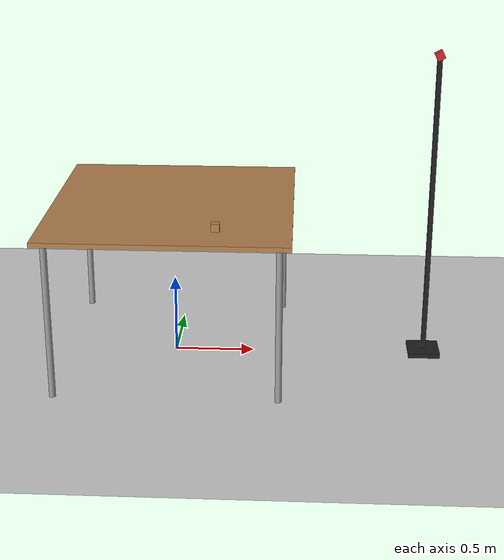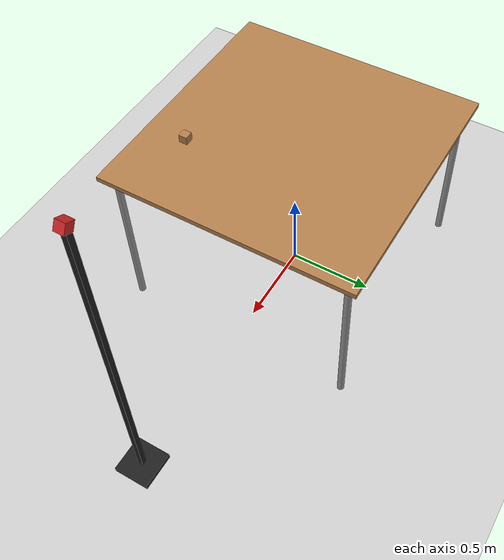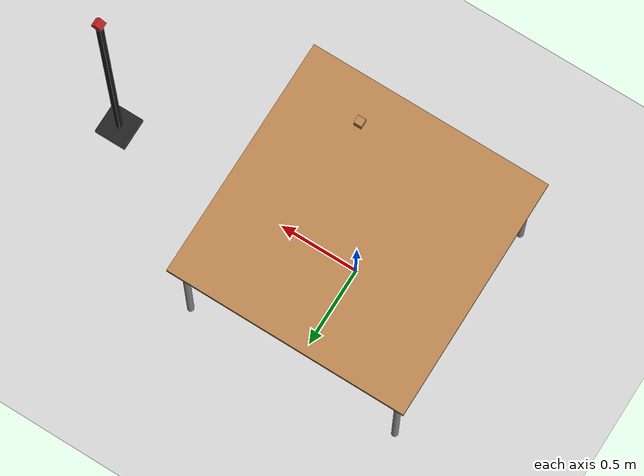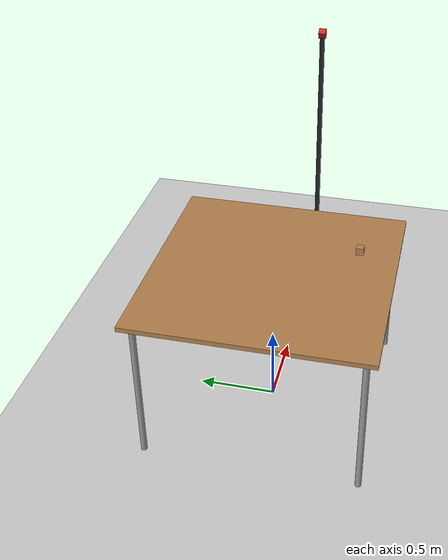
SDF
<sdf version="1.7">
 <world name="burger_assemble">
  <gravity>0 0 -9.8</gravity>
  <light name="sun" type="directional">
   <pose>0 0 10 0 -0 0</pose>
   <diffuse>0.8 0.8 0.8 1</diffuse>
   <specular>0.2 0.2 0.2 1</specular>
   <attenuation>
    <range>1000</range>
    <constant>0.9</constant>
    <linear>0.01</linear>
    <quadratic>0.001</quadratic>
   </attenuation>
   <direction>-0.5 0.1 -0.9</direction>
   <spot><inner_angle>0</inner_angle><outer_angle>0</outer_angle><falloff>0</falloff></spot>
  </light>
  <model name="ground_plane">
   <static>1</static>
   <link name="link">
    <collision name="collision">
     <geometry><plane><normal>0 0 1</normal><size>20 20</size></plane></geometry>
     <surface><friction><ode><mu>100</mu><mu2>50</mu2></ode></friction></surface>
    </collision>
    <visual name="visual">
     <cast_shadows>0</cast_shadows>
     <geometry><plane><normal>0 0 1</normal><size>20 20</size></plane></geometry>
     <material>
      <script><uri>file://media/materials/scripts/gazebo.material</uri><name>Gazebo/Grey</name></script>
     </material>
    </visual>
   </link>
  </model>
  <model name="table">
   <static>1</static>
   <link name="table_base">
    <collision name="surface_collision">
     <pose>0 0 1 0 -0 0</pose>
     <geometry><box><size>1.5 1.5 0.03</size></box></geometry>
     <surface><friction><ode><mu>0.6</mu><mu2>0.6</mu2></ode></friction></surface>
    </collision>
    <visual name="surface_visual">
     <pose>0 0 1 0 -0 0</pose>
     <geometry><box><size>1.5 1.5 0.03</size></box></geometry>
     <material>
      <script><uri>file://media/materials/scripts/gazebo.material</uri><name>Gazebo/Wood</name></script>
     </material>
    </visual>
    <collision name="front_left_leg_collision">
     <pose>0.68 0.68 0.5 0 -0 0</pose>
     <geometry><cylinder><radius>0.02</radius><length>1</length></cylinder></geometry>
    </collision>
    <visual name="front_left_leg_visual">
     <pose>0.68 0.68 0.5 0 -0 0</pose>
     <geometry><cylinder><radius>0.02</radius><length>1</length></cylinder></geometry>
     <material>
      <script><uri>file://media/materials/scripts/gazebo.material</uri><name>Gazebo/Grey</name></script>
     </material>
    </visual>
    <collision name="front_right_leg_collision">
     <pose>0.68 -0.68 0.5 0 -0 0</pose>
     <geometry><cylinder><radius>0.02</radius><length>1</length></cylinder></geometry>
    </collision>
    <visual name="front_right_leg_visual">
     <pose>0.68 -0.68 0.5 0 -0 0</pose>
     <geometry><cylinder><radius>0.02</radius><length>1</length></cylinder></geometry>
     <material>
      <script><uri>file://media/materials/scripts/gazebo.material</uri><name>Gazebo/Grey</name></script>
     </material>
    </visual>
    <collision name="back_left_leg_collision">
     <pose>-0.68 0.68 0.5 0 -0 0</pose>
     <geometry><cylinder><radius>0.02</radius><length>1</length></cylinder></geometry>
    </collision>
    <visual name="back_left_leg_visual">
     <pose>-0.68 0.68 0.5 0 -0 0</pose>
     <geometry><cylinder><radius>0.02</radius><length>1</length></cylinder></geometry>
     <material>
      <script><uri>file://media/materials/scripts/gazebo.material</uri><name>Gazebo/Grey</name></script>
     </material>
    </visual>
    <collision name="back_right_leg_collision">
     <pose>-0.68 -0.68 0.5 0 -0 0</pose>
     <geometry><cylinder><radius>0.02</radius><length>1</length></cylinder></geometry>
    </collision>
    <visual name="back_right_leg_visual">
     <pose>-0.68 -0.68 0.5 0 -0 0</pose>
     <geometry><cylinder><radius>0.02</radius><length>1</length></cylinder></geometry>
     <material>
      <script><uri>file://media/materials/scripts/gazebo.material</uri><name>Gazebo/Grey</name></script>
     </material>
    </visual>
   </link>
  </model>
  <model name="camera1">
   <pose>1.6 0 0.015 0 -0 3.1415</pose>
   <static>1</static>
   <link name="camera_base">
    <pose>0 0 0.015 0 -0 0</pose>
    <visual name="camera_base_visual">
     <geometry><box><size>0.2 0.2 0.03</size></box></geometry>
     <material>
      <script><uri>file://media/materials/scripts/gazebo.material</uri><name>Gazebo/Black</name></script>
     </material>
    </visual>
    <collision name="camera_base_collision"><geometry><box><size>0.2 0.2 0.03</size></box></geometry></collision>
   </link>
   <link name="camera_bracket">
    <pose>0 0 0.965 0 -0 0</pose>
    <visual name="camera_bracket_visual">
     <geometry><box><size>0.03 0.03 1.9</size></box></geometry>
     <material>
      <script><uri>file://media/materials/scripts/gazebo.material</uri><name>Gazebo/Black</name></script>
     </material>
    </visual>
    <collision name="camera_bracket_collision">
     <geometry><box><size>0.03 0.03 1.9</size></box></geometry>
    </collision>
   </link>
   <link name="camera">
    <pose>0 0 1.94 0 0.48 0</pose>
    <visual name="camera_visual">
     <geometry><box><size>0.05 0.05 0.05</size></box></geometry>
     <material>
      <script><uri>file://media/materials/scripts/gazebo.material</uri><name>Gazebo/Red</name></script>
     </material>
    </visual>
    <collision name="camera_collision"><geometry><box><size>0.05 0.05 0.05</size></box></geometry></collision>
    <sensor name="rgb_camera" type="camera">
     <always_on>1</always_on>
     <update_rate>30</update_rate>
     <visualize>1</visualize>
     <camera>
      <horizontal_fov>1.25</horizontal_fov>
      <image><width>1920</width><height>1080</height><format>R8G8B8</format></image>
      <clip><near>0.1</near><far>100</far></clip>
     </camera>
     <plugin name="gazebo_ros_camera" filename="libgazebo_ros_camera.so">
      <camera_name>rgb_camera</camera_name>
      <image_topic_name>/camera/image_raw</image_topic_name>
      <camera_info_topic_name>/camera/camera_info</camera_info_topic_name>
      <frame_name>camera_optical_frame</frame_name>
     </plugin>
    </sensor>
   </link>
   <joint name="camera_base_to_bracket" type="fixed">
    <parent>camera_base</parent>
    <child>camera_bracket</child>
   </joint>
   <joint name="camera_bracket_to_camera" type="fixed">
    <parent>camera_bracket</parent>
    <child>camera</child>
   </joint>
  </model>
  <plugin name="gazebo_ros_state" filename="libgazebo_ros_state.so">
   <ros><namespace>/gazebo</namespace></ros>
  </plugin>
  <magnetic_field>6e-06 2.3e-05 -4.2e-05</magnetic_field>
  <atmosphere type="adiabatic"/>
  <physics type="ode">
   <max_step_size>0.001</max_step_size>
   <real_time_factor>1</real_time_factor>
   <real_time_update_rate>1000</real_time_update_rate>
  </physics>
  <scene><ambient>0.4 0.4 0.4 1</ambient><background>0.7 0.7 0.7 1</background><shadows>1</shadows></scene>
  <audio><device>default</device></audio>
  <spherical_coordinates>
   <surface_model>EARTH_WGS84</surface_model>
   <latitude_deg>0</latitude_deg>
   <longitude_deg>0</longitude_deg>
   <elevation>0</elevation>
   <heading_deg>0</heading_deg>
  </spherical_coordinates>
  <model name="wood_cube_5cm">
   <link name="link">
    <pose>0 0 0.025 0 -0 0</pose>
    <inertial>
     <mass>0.0565</mass>
     <inertia>
      <ixx>2.35417e-05</ixx>
      <ixy>0</ixy>
      <ixz>0</ixz>
      <iyy>2.35417e-05</iyy>
      <iyz>0</iyz>
      <izz>2.35417e-05</izz>
     </inertia>
    </inertial>
    <collision name="collision">
     <geometry><box><size>0.05 0.05 0.05</size></box></geometry>
     <surface>
      <contact>
       <poissons_ratio>0.347</poissons_ratio>
       <elastic_modulus>8.8e+09</elastic_modulus>
       <ode><kp>100000</kp><kd>1</kd><max_vel>1</max_vel><min_depth>0.001</min_depth></ode>
      </contact>
      <friction>
       <torsional>
        <coefficient>1</coefficient>
        <use_patch_radius>0</use_patch_radius>
        <surface_radius>0.05</surface_radius>
       </torsional>
      </friction>
     </surface>
    </collision>
    <visual name="visual">
     <geometry><box><size>0.05 0.05 0.05</size></box></geometry>
     <material>
      <script><uri>file://media/materials/scripts/gazebo.material</uri><name>Gazebo/Wood</name></script>
     </material>
    </visual>
   </link>
   <pose>0.3 -0.5 1.014 0 -0 0</pose>
  </model>
 </world>
</sdf>
